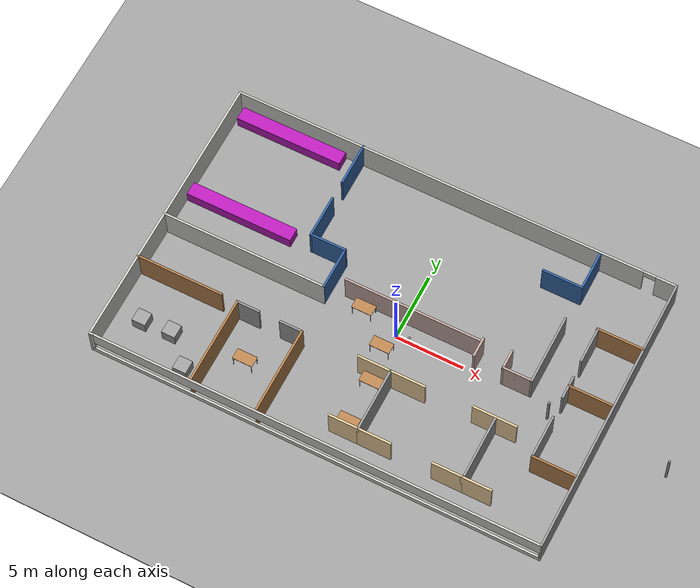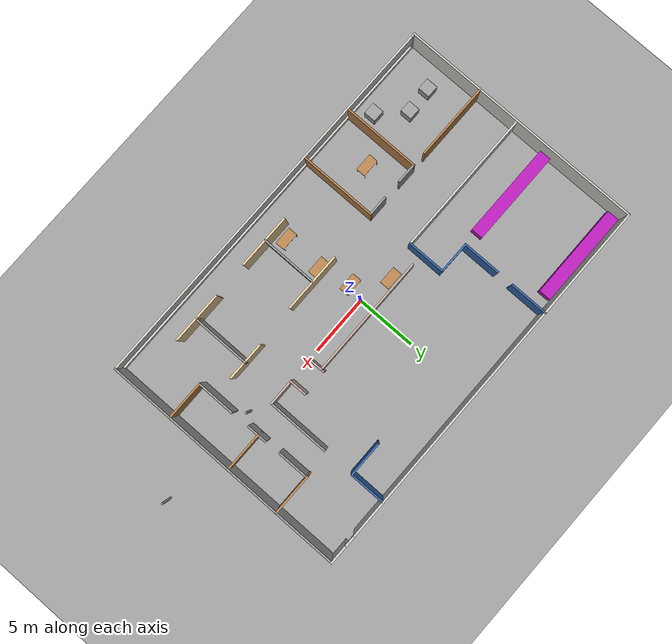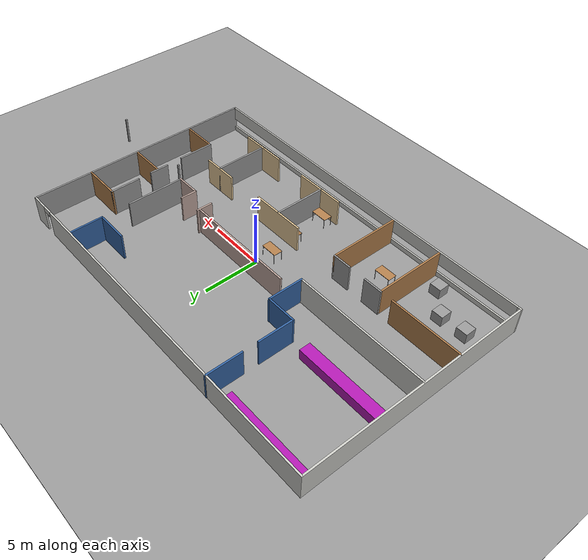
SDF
<sdf version="1.6">
 <world name="default">
  <model name="ground_plane">
   <static>1</static>
   <link name="link">
    <collision name="collision">
     <geometry><plane><normal>0 0 1</normal><size>100 100</size></plane></geometry>
     <surface>
      <contact><collide_bitmask>65535</collide_bitmask></contact>
      <friction><ode><mu>100</mu><mu2>50</mu2></ode></friction>
     </surface>
    </collision>
    <visual name="visual">
     <cast_shadows>0</cast_shadows>
     <geometry><plane><normal>0 0 1</normal><size>100 100</size></plane></geometry>
     <material>
      <script><uri>file://media/materials/scripts/gazebo.material</uri><name>Gazebo/Grey</name></script>
     </material>
    </visual>
   </link>
  </model>
  <model name="myworld2">
   <pose>1.34917 0.407472 0 0 -0 0</pose>
   <link name="Wall_21">
    <collision name="Wall_21_Collision">
     <geometry><box><size>0.15 0.15 2.5</size></box></geometry>
     <pose>0 0 1.25 0 -0 0</pose>
    </collision>
    <visual name="Wall_21_Visual">
     <pose>0 0 1.25 0 -0 0</pose>
     <geometry><box><size>0.15 0.15 2.5</size></box></geometry>
     <material>
      <script><uri>file://media/materials/scripts/gazebo.material</uri><name>Gazebo/Grey</name></script>
      <ambient>1 1 1 1</ambient>
     </material>
     <meta><layer>0</layer></meta>
    </visual>
    <pose>18.9712 -1.42144 0 0 -0 0</pose>
   </link>
   <link name="Wall_29">
    <collision name="Wall_29_Collision">
     <geometry><box><size>0.15 0.15 2.5</size></box></geometry>
     <pose>0 0 1.25 0 -0 0</pose>
    </collision>
    <visual name="Wall_29_Visual">
     <pose>0 0 1.25 0 -0 0</pose>
     <geometry><box><size>0.15 0.15 2.5</size></box></geometry>
     <material>
      <script><uri>file://media/materials/scripts/gazebo.material</uri><name>Gazebo/Grey</name></script>
      <ambient>1 1 1 1</ambient>
     </material>
     <meta><layer>0</layer></meta>
    </visual>
    <pose>10.2577 -1.19451 0 0 -0 0</pose>
   </link>
   <link name="Wall_32">
    <pose>-2.42121 10.4091 0 0 -0 0</pose>
    <visual name="Wall_32_Visual_0">
     <pose>-1.23336 0 1.25 0 -0 0</pose>
     <geometry><box><size>30.7833 0.15 2.5</size></box></geometry>
     <material>
      <script><uri>file://media/materials/scripts/gazebo.material</uri><name>Gazebo/CeilingTiled</name></script>
      <ambient>0.203922 0.396078 0.643137 1</ambient>
     </material>
     <meta><layer>0</layer></meta>
    </visual>
    <collision name="Wall_32_Collision_0">
     <geometry><box><size>30.7833 0.15 2.5</size></box></geometry>
     <pose>-1.23336 0 1.25 0 -0 0</pose>
    </collision>
    <visual name="Wall_32_Visual_1">
     <pose>15.8416 0 1.25 0 -0 0</pose>
     <geometry><box><size>1.56672 0.15 2.5</size></box></geometry>
     <material>
      <script><uri>file://media/materials/scripts/gazebo.material</uri><name>Gazebo/CeilingTiled</name></script>
      <ambient>0.203922 0.396078 0.643137 1</ambient>
     </material>
     <meta><layer>0</layer></meta>
    </visual>
    <collision name="Wall_32_Collision_1">
     <geometry><box><size>1.56672 0.15 2.5</size></box></geometry>
     <pose>15.8416 0 1.25 0 -0 0</pose>
    </collision>
    <visual name="Wall_32_Visual_2">
     <pose>14.6083 0 2.25 0 -0 0</pose>
     <geometry><box><size>0.9 0.15 0.5</size></box></geometry>
     <material>
      <script><uri>file://media/materials/scripts/gazebo.material</uri><name>Gazebo/CeilingTiled</name></script>
      <ambient>0.203922 0.396078 0.643137 1</ambient>
     </material>
     <meta><layer>0</layer></meta>
    </visual>
    <collision name="Wall_32_Collision_2">
     <geometry><box><size>0.9 0.15 0.5</size></box></geometry>
     <pose>14.6083 0 2.25 0 -0 0</pose>
    </collision>
   </link>
   <link name="Wall_33">
    <collision name="Wall_33_Collision">
     <geometry><box><size>21 0.15 2.5</size></box></geometry>
     <pose>0 0 1.25 0 -0 0</pose>
    </collision>
    <visual name="Wall_33_Visual">
     <pose>0 0 1.25 0 -0 0</pose>
     <geometry><box><size>21 0.15 2.5</size></box></geometry>
     <material>
      <script><uri>file://media/materials/scripts/gazebo.material</uri><name>Gazebo/Grey</name></script>
      <ambient>1 1 1 1</ambient>
     </material>
     <meta><layer>0</layer></meta>
    </visual>
    <pose>14.1288 -0.015902 0 0 -0 -1.5708</pose>
   </link>
   <link name="Wall_34">
    <pose>-2.42121 -10.4409 0 0 -0 3.14159</pose>
    <visual name="Wall_34_Visual_0">
     <pose>-16.5864 0 1.25 0 -0 0</pose>
     <geometry><box><size>0.077133 0.15 2.5</size></box></geometry>
     <material>
      <script><uri>file://media/materials/scripts/gazebo.material</uri><name>Gazebo/CeilingTiled</name></script>
      <ambient>1 1 1 1</ambient>
     </material>
     <meta><layer>0</layer></meta>
    </visual>
    <collision name="Wall_34_Collision_0">
     <geometry><box><size>0.077133 0.15 2.5</size></box></geometry>
     <pose>-16.5864 0 1.25 0 -0 0</pose>
    </collision>
    <visual name="Wall_34_Visual_1">
     <pose>0.038567 0 0.25 0 -0 0</pose>
     <geometry><box><size>33.1729 0.15 0.5</size></box></geometry>
     <material>
      <script><uri>file://media/materials/scripts/gazebo.material</uri><name>Gazebo/CeilingTiled</name></script>
      <ambient>1 1 1 1</ambient>
     </material>
     <meta><layer>0</layer></meta>
    </visual>
    <collision name="Wall_34_Collision_1">
     <geometry><box><size>33.1729 0.15 0.5</size></box></geometry>
     <pose>0.038567 0 0.25 0 -0 0</pose>
    </collision>
    <visual name="Wall_34_Visual_2">
     <pose>16.4492 0 1.5 0 -0 0</pose>
     <geometry><box><size>0.35158 0.15 2</size></box></geometry>
     <material>
      <script><uri>file://media/materials/scripts/gazebo.material</uri><name>Gazebo/CeilingTiled</name></script>
      <ambient>1 1 1 1</ambient>
     </material>
     <meta><layer>0</layer></meta>
    </visual>
    <collision name="Wall_34_Collision_2">
     <geometry><box><size>0.35158 0.15 2</size></box></geometry>
     <pose>16.4492 0 1.5 0 -0 0</pose>
    </collision>
    <visual name="Wall_34_Visual_3">
     <pose>-0.137223 0 1.9 0 -0 0</pose>
     <geometry><box><size>32.8213 0.15 1.2</size></box></geometry>
     <material>
      <script><uri>file://media/materials/scripts/gazebo.material</uri><name>Gazebo/CeilingTiled</name></script>
      <ambient>1 1 1 1</ambient>
     </material>
     <meta><layer>0</layer></meta>
    </visual>
    <collision name="Wall_34_Collision_3">
     <geometry><box><size>32.8213 0.15 1.2</size></box></geometry>
     <pose>-0.137223 0 1.9 0 -0 0</pose>
    </collision>
   </link>
   <link name="Wall_35">
    <collision name="Wall_35_Collision">
     <geometry><box><size>21 0.15 2.5</size></box></geometry>
     <pose>0 0 1.25 0 -0 0</pose>
    </collision>
    <visual name="Wall_35_Visual">
     <pose>0 0 1.25 0 -0 0</pose>
     <geometry><box><size>21 0.15 2.5</size></box></geometry>
     <material>
      <script><uri>file://media/materials/scripts/gazebo.material</uri><name>Gazebo/CeilingTiled</name></script>
      <ambient>1 1 1 1</ambient>
     </material>
     <meta><layer>0</layer></meta>
    </visual>
    <pose>-18.9712 -0.015902 0 0 -0 1.5708</pose>
   </link>
   <link name="Wall_38">
    <collision name="Wall_38_Collision">
     <geometry><box><size>6.5 0.15 2.5</size></box></geometry>
     <pose>0 0 1.25 0 -0 0</pose>
    </collision>
    <visual name="Wall_38_Visual">
     <pose>0 0 1.25 0 -0 0</pose>
     <geometry><box><size>6.5 0.15 2.5</size></box></geometry>
     <material>
      <script><uri>file://media/materials/scripts/gazebo.material</uri><name>Gazebo/Wood</name></script>
      <ambient>1 1 1 1</ambient>
     </material>
     <meta><layer>0</layer></meta>
    </visual>
    <pose>-15.7869 -3.95257 0 0 -0 0</pose>
   </link>
   <link name="Wall_40">
    <collision name="Wall_40_Collision">
     <geometry><box><size>1.75 0.15 2.5</size></box></geometry>
     <pose>0 0 1.25 0 -0 0</pose>
    </collision>
    <visual name="Wall_40_Visual">
     <pose>0 0 1.25 0 -0 0</pose>
     <geometry><box><size>1.75 0.15 2.5</size></box></geometry>
     <material>
      <script><uri>file://media/materials/scripts/gazebo.material</uri><name>Gazebo/Grey</name></script>
      <ambient>1 1 1 1</ambient>
     </material>
     <meta><layer>0</layer></meta>
    </visual>
    <pose>-10.5979 -3.95257 0 0 -0 0</pose>
   </link>
   <link name="Wall_42">
    <collision name="Wall_42_Collision">
     <geometry><box><size>1.75 0.15 2.5</size></box></geometry>
     <pose>0 0 1.25 0 -0 0</pose>
    </collision>
    <visual name="Wall_42_Visual">
     <pose>0 0 1.25 0 -0 0</pose>
     <geometry><box><size>1.75 0.15 2.5</size></box></geometry>
     <material>
      <script><uri>file://media/materials/scripts/gazebo.material</uri><name>Gazebo/Grey</name></script>
      <ambient>1 1 1 1</ambient>
     </material>
     <meta><layer>0</layer></meta>
    </visual>
    <pose>-7.34119 -3.95257 0 0 -0 0</pose>
   </link>
   <link name="Wall_44">
    <collision name="Wall_44_Collision">
     <geometry><box><size>6.5 0.15 2.5</size></box></geometry>
     <pose>0 0 1.25 0 -0 0</pose>
    </collision>
    <visual name="Wall_44_Visual">
     <pose>0 0 1.25 0 -0 0</pose>
     <geometry><box><size>6.5 0.15 2.5</size></box></geometry>
     <material>
      <script><uri>file://media/materials/scripts/gazebo.material</uri><name>Gazebo/Wood</name></script>
      <ambient>1 1 1 1</ambient>
     </material>
     <meta><layer>0</layer></meta>
    </visual>
    <pose>-6.54119 -7.12757 0 0 -0 -1.5708</pose>
   </link>
   <link name="Wall_46">
    <collision name="Wall_46_Collision">
     <geometry><box><size>6.5 0.15 2.5</size></box></geometry>
     <pose>0 0 1.25 0 -0 0</pose>
    </collision>
    <visual name="Wall_46_Visual">
     <pose>0 0 1.25 0 -0 0</pose>
     <geometry><box><size>6.5 0.15 2.5</size></box></geometry>
     <material>
      <script><uri>file://media/materials/scripts/gazebo.material</uri><name>Gazebo/Wood</name></script>
      <ambient>1 1 1 1</ambient>
     </material>
     <meta><layer>0</layer></meta>
    </visual>
    <pose>-11.3979 -7.12757 0 0 -0 -1.5708</pose>
   </link>
   <link name="Wall_48">
    <collision name="Wall_48_Collision">
     <geometry><box><size>12.25 0.15 2.5</size></box></geometry>
     <pose>0 0 1.25 0 -0 0</pose>
    </collision>
    <visual name="Wall_48_Visual">
     <pose>0 0 1.25 0 -0 0</pose>
     <geometry><box><size>12.25 0.15 2.5</size></box></geometry>
     <material>
      <script><uri>file://media/materials/scripts/gazebo.material</uri><name>Gazebo/CeilingTiled</name></script>
      <ambient>1 1 1 1</ambient>
     </material>
     <meta><layer>0</layer></meta>
    </visual>
    <pose>-12.8594 -0.328155 0 0 -0 0</pose>
   </link>
   <link name="Wall_49">
    <collision name="Wall_49_Collision">
     <geometry><box><size>3.25 0.15 2.5</size></box></geometry>
     <pose>0 0 1.25 0 -0 0</pose>
    </collision>
    <visual name="Wall_49_Visual">
     <pose>0 0 1.25 0 -0 0</pose>
     <geometry><box><size>3.25 0.15 2.5</size></box></geometry>
     <material>
      <script><uri>file://media/materials/scripts/gazebo.material</uri><name>Gazebo/Grey</name></script>
      <ambient>0.203922 0.396078 0.643137 1</ambient>
     </material>
     <meta><layer>0</layer></meta>
    </visual>
    <pose>-6.80939 1.22185 0 0 -0 1.5708</pose>
   </link>
   <link name="Wall_50">
    <collision name="Wall_50_Collision">
     <geometry><box><size>2.75 0.15 2.5</size></box></geometry>
     <pose>0 0 1.25 0 -0 0</pose>
    </collision>
    <visual name="Wall_50_Visual">
     <pose>0 0 1.25 0 -0 0</pose>
     <geometry><box><size>2.75 0.15 2.5</size></box></geometry>
     <material>
      <script><uri>file://media/materials/scripts/gazebo.material</uri><name>Gazebo/Grey</name></script>
      <ambient>0.203922 0.396078 0.643137 1</ambient>
     </material>
     <meta><layer>0</layer></meta>
    </visual>
    <pose>-8.10939 2.77184 0 0 -0 3.14159</pose>
   </link>
   <link name="Wall_53">
    <collision name="Wall_53_Collision">
     <geometry><box><size>3.25 0.15 2.5</size></box></geometry>
     <pose>0 0 1.25 0 -0 0</pose>
    </collision>
    <visual name="Wall_53_Visual">
     <pose>0 0 1.25 0 -0 0</pose>
     <geometry><box><size>3.25 0.15 2.5</size></box></geometry>
     <material>
      <script><uri>file://media/materials/scripts/gazebo.material</uri><name>Gazebo/Grey</name></script>
      <ambient>0.203922 0.396078 0.643137 1</ambient>
     </material>
     <meta><layer>0</layer></meta>
    </visual>
    <pose>-9.40939 4.32184 0 0 -0 1.5708</pose>
   </link>
   <link name="Wall_55">
    <collision name="Wall_55_Collision">
     <geometry><box><size>3.25 0.15 2.5</size></box></geometry>
     <pose>0 0 1.25 0 -0 0</pose>
    </collision>
    <visual name="Wall_55_Visual">
     <pose>0 0 1.25 0 -0 0</pose>
     <geometry><box><size>3.25 0.15 2.5</size></box></geometry>
     <material>
      <script><uri>file://media/materials/scripts/gazebo.material</uri><name>Gazebo/Grey</name></script>
      <ambient>0.203922 0.396078 0.643137 1</ambient>
     </material>
     <meta><layer>0</layer></meta>
    </visual>
    <pose>-9.40186 8.8909 0 0 -0 1.5708</pose>
   </link>
   <link name="Wall_57">
    <collision name="Wall_57_Collision">
     <geometry><box><size>10.25 0.15 2.5</size></box></geometry>
     <pose>0 1.5 1.25 0 -0 0</pose>
    </collision>
    <visual name="Wall_57_Visual">
     <pose>0 1.5 1.25 0 -0 0</pose>
     <geometry><box><size>10.25 0.15 2.5</size></box></geometry>
     <material>
      <script><uri>file://media/materials/scripts/gazebo.material</uri><name>Gazebo/Grey</name></script>
      <ambient>0.760784 0.662745 0.627451 1</ambient>
     </material>
     <meta><layer>0</layer></meta>
    </visual>
    <pose>-0.674915 -0.671847 0 0 -0 0</pose>
   </link>
   <link name="Wall_58">
    <collision name="Wall_58_Collision">
     <geometry><box><size>1.5 0.15 2.5</size></box></geometry>
     <pose>0 0 1.25 0 -0 0</pose>
    </collision>
    <visual name="Wall_58_Visual">
     <pose>0 0 1.25 0 -0 0</pose>
     <geometry><box><size>1.5 0.15 2.5</size></box></geometry>
     <material>
      <script><uri>file://media/materials/scripts/gazebo.material</uri><name>Gazebo/Grey</name></script>
      <ambient>0.760784 0.662745 0.627451 1</ambient>
     </material>
     <meta><layer>0</layer></meta>
    </visual>
    <pose>4.37509 0.346845 0 0 -0 1.5708</pose>
   </link>
   <link name="Wall_60">
    <collision name="Wall_60_Collision">
     <geometry><box><size>1.5 0.15 2.5</size></box></geometry>
     <pose>0 0 1.25 0 -0 0</pose>
    </collision>
    <visual name="Wall_60_Visual">
     <pose>0 0 1.25 0 -0 0</pose>
     <geometry><box><size>1.5 0.15 2.5</size></box></geometry>
     <material>
      <script><uri>file://media/materials/scripts/gazebo.material</uri><name>Gazebo/Grey</name></script>
      <ambient>0.760784 0.662745 0.627451 1</ambient>
     </material>
     <meta><layer>0</layer></meta>
    </visual>
    <pose>6.46153 0.415095 0 0 -0 -1.5708</pose>
   </link>
   <link name="Wall_61">
    <collision name="Wall_61_Collision">
     <geometry><box><size>2.25 0.15 2.5</size></box></geometry>
     <pose>0 0 1.25 0 -0 0</pose>
    </collision>
    <visual name="Wall_61_Visual">
     <pose>0 0 1.25 0 -0 0</pose>
     <geometry><box><size>2.25 0.15 2.5</size></box></geometry>
     <material>
      <script><uri>file://media/materials/scripts/gazebo.material</uri><name>Gazebo/Grey</name></script>
      <ambient>0.760784 0.662745 0.627451 1</ambient>
     </material>
     <meta><layer>0</layer></meta>
    </visual>
    <pose>7.51154 -0.259905 0 0 -0 0</pose>
   </link>
   <link name="Wall_62">
    <collision name="Wall_62_Collision">
     <geometry><box><size>5.25 0.15 2.5</size></box></geometry>
     <pose>0 0 1.25 0 -0 0</pose>
    </collision>
    <visual name="Wall_62_Visual">
     <pose>0 0 1.25 0 -0 0</pose>
     <geometry><box><size>5.25 0.15 2.5</size></box></geometry>
     <material>
      <script><uri>file://media/materials/scripts/gazebo.material</uri><name>Gazebo/Grey</name></script>
      <ambient>1 1 1 1</ambient>
     </material>
     <meta><layer>0</layer></meta>
    </visual>
    <pose>8.56154 2.29009 0 0 -0 1.5708</pose>
   </link>
   <link name="Wall_64">
    <collision name="Wall_64_Collision">
     <geometry><box><size>3 0.15 2.5</size></box></geometry>
     <pose>0 0 1.25 0 -0 0</pose>
    </collision>
    <visual name="Wall_64_Visual">
     <pose>0 0 1.25 0 -0 0</pose>
     <geometry><box><size>3 0.15 2.5</size></box></geometry>
     <material>
      <script><uri>file://media/materials/scripts/gazebo.material</uri><name>Gazebo/Grey</name></script>
      <ambient>0.203922 0.396078 0.643137 1</ambient>
     </material>
     <meta><layer>0</layer></meta>
    </visual>
    <pose>7.13765 7.44596 0 0 -0 3.14159</pose>
   </link>
   <link name="Wall_66">
    <collision name="Wall_66_Collision">
     <geometry><box><size>3 0.15 2.5</size></box></geometry>
     <pose>0 0 1.25 0 -0 0</pose>
    </collision>
    <visual name="Wall_66_Visual">
     <pose>0 0 1.25 0 -0 0</pose>
     <geometry><box><size>3 0.15 2.5</size></box></geometry>
     <material>
      <script><uri>file://media/materials/scripts/gazebo.material</uri><name>Gazebo/Grey</name></script>
      <ambient>0.203922 0.396078 0.643137 1</ambient>
     </material>
     <meta><layer>0</layer></meta>
    </visual>
    <pose>8.56265 8.87096 0 0 -0 1.5708</pose>
   </link>
   <link name="Wall_68">
    <collision name="Wall_68_Collision">
     <geometry><box><size>2.75 0.15 2.5</size></box></geometry>
     <pose>0 0 1.25 0 -0 0</pose>
    </collision>
    <visual name="Wall_68_Visual">
     <pose>0 0 1.25 0 -0 0</pose>
     <geometry><box><size>2.75 0.15 2.5</size></box></geometry>
     <material>
      <script><uri>file://media/materials/scripts/gazebo.material</uri><name>Gazebo/Grey</name></script>
      <ambient>1 1 1 1</ambient>
     </material>
     <meta><layer>0</layer></meta>
    </visual>
    <pose>10.8213 3.83474 0 0 -0 -1.5708</pose>
   </link>
   <link name="Wall_70">
    <collision name="Wall_70_Collision">
     <geometry><box><size>3.5 0.15 2.5</size></box></geometry>
     <pose>0 0 1.25 0 -0 0</pose>
    </collision>
    <visual name="Wall_70_Visual">
     <pose>0 0 1.25 0 -0 0</pose>
     <geometry><box><size>3.5 0.15 2.5</size></box></geometry>
     <material>
      <script><uri>file://media/materials/scripts/gazebo.material</uri><name>Gazebo/Wood</name></script>
      <ambient>1 1 1 1</ambient>
     </material>
     <meta><layer>0</layer></meta>
    </visual>
    <pose>12.4438 5.13474 0 0 -0 0</pose>
   </link>
   <link name="Wall_72">
    <collision name="Wall_72_Collision">
     <geometry><box><size>1.75 0.15 2.5</size></box></geometry>
     <pose>0 0 1.25 0 -0 0</pose>
    </collision>
    <visual name="Wall_72_Visual">
     <pose>0 0 1.25 0 -0 0</pose>
     <geometry><box><size>1.75 0.15 2.5</size></box></geometry>
     <material>
      <script><uri>file://media/materials/scripts/gazebo.material</uri><name>Gazebo/Grey</name></script>
      <ambient>1 1 1 1</ambient>
     </material>
     <meta><layer>0</layer></meta>
    </visual>
    <pose>10.8739 0.395151 0 0 -0 -1.5708</pose>
   </link>
   <link name="Wall_74">
    <collision name="Wall_74_Collision">
     <geometry><box><size>3.25 0.15 2.5</size></box></geometry>
     <pose>0 0 1.25 0 -0 0</pose>
    </collision>
    <visual name="Wall_74_Visual">
     <pose>0 0 1.25 0 -0 0</pose>
     <geometry><box><size>3.25 0.15 2.5</size></box></geometry>
     <material>
      <script><uri>file://media/materials/scripts/gazebo.material</uri><name>Gazebo/Grey</name></script>
      <ambient>1 1 1 1</ambient>
     </material>
     <meta><layer>0</layer></meta>
    </visual>
    <pose>10.9264 -3.55904 0 0 -0 -1.5708</pose>
   </link>
   <link name="Wall_75">
    <collision name="Wall_75_Collision">
     <geometry><box><size>3.25 0.15 2.5</size></box></geometry>
     <pose>0 0 1.25 0 -0 0</pose>
    </collision>
    <visual name="Wall_75_Visual">
     <pose>0 0 1.25 0 -0 0</pose>
     <geometry><box><size>3.25 0.15 2.5</size></box></geometry>
     <material>
      <script><uri>file://media/materials/scripts/gazebo.material</uri><name>Gazebo/Wood</name></script>
      <ambient>1 1 1 1</ambient>
     </material>
     <meta><layer>0</layer></meta>
    </visual>
    <pose>12.4764 -5.10905 0 0 -0 0</pose>
   </link>
   <link name="Wall_77">
    <collision name="Wall_77_Collision">
     <geometry><box><size>3.25 0.15 2.5</size></box></geometry>
     <pose>0 0 1.25 0 -0 0</pose>
    </collision>
    <visual name="Wall_77_Visual">
     <pose>0 0 1.25 0 -0 0</pose>
     <geometry><box><size>3.25 0.15 2.5</size></box></geometry>
     <material>
      <script><uri>file://media/materials/scripts/gazebo.material</uri><name>Gazebo/Wood</name></script>
      <ambient>1 1 1 1</ambient>
     </material>
     <meta><layer>0</layer></meta>
    </visual>
    <pose>12.4239 0.512289 0 0 -0 0</pose>
   </link>
   <link name="Wall_79">
    <collision name="Wall_79_Collision">
     <geometry><box><size>5 0.15 2.5</size></box></geometry>
     <pose>0 0 1.25 0 -0 0</pose>
    </collision>
    <visual name="Wall_79_Visual">
     <pose>0 0 1.25 0 -0 0</pose>
     <geometry><box><size>5 0.15 2.5</size></box></geometry>
     <material>
      <script><uri>file://media/materials/scripts/gazebo.material</uri><name>Gazebo/Grey</name></script>
      <ambient>0.921569 0.807843 0.615686 1</ambient>
     </material>
     <meta><layer>0</layer></meta>
    </visual>
    <pose>0.065808 -3.84752 0 0 -0 0</pose>
   </link>
   <link name="Wall_81">
    <collision name="Wall_81_Collision">
     <geometry><box><size>4.75 0.15 2.5</size></box></geometry>
     <pose>0 0 1.25 0 -0 0</pose>
    </collision>
    <visual name="Wall_81_Visual">
     <pose>0 0 1.25 0 -0 0</pose>
     <geometry><box><size>4.75 0.15 2.5</size></box></geometry>
     <material>
      <script><uri>file://media/materials/scripts/gazebo.material</uri><name>Gazebo/Grey</name></script>
      <ambient>1 1 1 1</ambient>
     </material>
     <meta><layer>0</layer></meta>
    </visual>
    <pose>0.000616 -6.20005 0 0 -0 -1.5708</pose>
   </link>
   <link name="Wall_82">
    <collision name="Wall_82_Collision">
     <geometry><box><size>2.5 0.15 2.5</size></box></geometry>
     <pose>0 0 1.25 0 -0 0</pose>
    </collision>
    <visual name="Wall_82_Visual">
     <pose>0 0 1.25 0 -0 0</pose>
     <geometry><box><size>2.5 0.15 2.5</size></box></geometry>
     <material>
      <script><uri>file://media/materials/scripts/gazebo.material</uri><name>Gazebo/Grey</name></script>
      <ambient>0.921569 0.807843 0.615686 1</ambient>
     </material>
     <meta><layer>0</layer></meta>
    </visual>
    <pose>1.17562 -8.50005 0 0 -0 0</pose>
   </link>
   <link name="Wall_84">
    <collision name="Wall_84_Collision">
     <geometry><box><size>2.25 0.15 2.5</size></box></geometry>
     <pose>0 0 1.25 0 -0 0</pose>
    </collision>
    <visual name="Wall_84_Visual">
     <pose>0 0 1.25 0 -0 0</pose>
     <geometry><box><size>2.25 0.15 2.5</size></box></geometry>
     <material>
      <script><uri>file://media/materials/scripts/gazebo.material</uri><name>Gazebo/Grey</name></script>
      <ambient>0.921569 0.807843 0.615686 1</ambient>
     </material>
     <meta><layer>0</layer></meta>
    </visual>
    <pose>-1.04938 -8.50005 0 0 -0 3.14159</pose>
   </link>
   <link name="Wall_86">
    <collision name="Wall_86_Collision">
     <geometry><box><size>3.25 0.15 2.5</size></box></geometry>
     <pose>0 0 1.25 0 -0 0</pose>
    </collision>
    <visual name="Wall_86_Visual">
     <pose>0 0 1.25 0 -0 0</pose>
     <geometry><box><size>3.25 0.15 2.5</size></box></geometry>
     <material>
      <script><uri>file://media/materials/scripts/gazebo.material</uri><name>Gazebo/Grey</name></script>
      <ambient>0.921569 0.807843 0.615686 1</ambient>
     </material>
     <meta><layer>0</layer></meta>
    </visual>
    <pose>7.53878 -3.68994 0 0 -0 0</pose>
   </link>
   <link name="Wall_88">
    <collision name="Wall_88_Collision">
     <geometry><box><size>4.75 0.15 2.5</size></box></geometry>
     <pose>0 0 1.25 0 -0 0</pose>
    </collision>
    <visual name="Wall_88_Visual">
     <pose>0 0 1.25 0 -0 0</pose>
     <geometry><box><size>4.75 0.15 2.5</size></box></geometry>
     <material>
      <script><uri>file://media/materials/scripts/gazebo.material</uri><name>Gazebo/Grey</name></script>
      <ambient>1 1 1 1</ambient>
     </material>
     <meta><layer>0</layer></meta>
    </visual>
    <pose>7.61715 -5.98994 0 0 -0 -1.5708</pose>
   </link>
   <link name="Wall_90">
    <collision name="Wall_90_Collision">
     <geometry><box><size>2.25 0.15 2.5</size></box></geometry>
     <pose>0 0 1.25 0 -0 0</pose>
    </collision>
    <visual name="Wall_90_Visual">
     <pose>0 0 1.25 0 -0 0</pose>
     <geometry><box><size>2.25 0.15 2.5</size></box></geometry>
     <material>
      <script><uri>file://media/materials/scripts/gazebo.material</uri><name>Gazebo/Grey</name></script>
      <ambient>0.921569 0.807843 0.615686 1</ambient>
     </material>
     <meta><layer>0</layer></meta>
    </visual>
    <pose>6.46098 -8.46997 0 0 -0 0</pose>
   </link>
   <link name="Wall_91">
    <collision name="Wall_91_Collision">
     <geometry><box><size>2.25 0.15 2.5</size></box></geometry>
     <pose>0 0 1.25 0 -0 0</pose>
    </collision>
    <visual name="Wall_91_Visual">
     <pose>0 0 1.25 0 -0 0</pose>
     <geometry><box><size>2.25 0.15 2.5</size></box></geometry>
     <material>
      <script><uri>file://media/materials/scripts/gazebo.material</uri><name>Gazebo/Grey</name></script>
      <ambient>0.921569 0.807843 0.615686 1</ambient>
     </material>
     <meta><layer>0</layer></meta>
    </visual>
    <pose>8.56098 -8.46997 0 0 -0 0</pose>
   </link>
   <static>1</static>
  </model>
  <model name="ground_plane_0">
   <static>1</static>
   <link name="link">
    <collision name="collision">
     <geometry><plane><normal>0 0 1</normal><size>100 100</size></plane></geometry>
     <surface>
      <contact><collide_bitmask>65535</collide_bitmask></contact>
      <friction><ode><mu>100</mu><mu2>50</mu2></ode></friction>
     </surface>
    </collision>
    <visual name="visual">
     <cast_shadows>0</cast_shadows>
     <geometry><plane><normal>0 0 1</normal><size>100 100</size></plane></geometry>
     <material>
      <script><uri>file://media/materials/scripts/gazebo.material</uri><name>Gazebo/Grey</name></script>
     </material>
    </visual>
   </link>
   <pose>-9.98437 5.08925 0 0 -0 0</pose>
  </model>
  <model name="table">
   <static>1</static>
   <link name="link">
    <collision name="surface">
     <pose>0 0 1 0 -0 0</pose>
     <geometry><box><size>1.5 0.8 0.03</size></box></geometry>
     <surface><friction><ode><mu>0.6</mu><mu2>0.6</mu2></ode></friction></surface>
    </collision>
    <visual name="visual1">
     <pose>0 0 1 0 -0 0</pose>
     <geometry><box><size>1.5 0.8 0.03</size></box></geometry>
     <material>
      <script><uri>file://media/materials/scripts/gazebo.material</uri><name>Gazebo/Wood</name></script>
     </material>
    </visual>
    <collision name="front_left_leg">
     <pose>0.68 0.38 0.5 0 -0 0</pose>
     <geometry><cylinder><radius>0.02</radius><length>1</length></cylinder></geometry>
    </collision>
    <visual name="front_left_leg">
     <pose>0.68 0.38 0.5 0 -0 0</pose>
     <geometry><cylinder><radius>0.02</radius><length>1</length></cylinder></geometry>
     <material>
      <script><uri>file://media/materials/scripts/gazebo.material</uri><name>Gazebo/Grey</name></script>
     </material>
    </visual>
    <collision name="front_right_leg">
     <pose>0.68 -0.38 0.5 0 -0 0</pose>
     <geometry><cylinder><radius>0.02</radius><length>1</length></cylinder></geometry>
    </collision>
    <visual name="front_right_leg">
     <pose>0.68 -0.38 0.5 0 -0 0</pose>
     <geometry><cylinder><radius>0.02</radius><length>1</length></cylinder></geometry>
     <material>
      <script><uri>file://media/materials/scripts/gazebo.material</uri><name>Gazebo/Grey</name></script>
     </material>
    </visual>
    <collision name="back_right_leg">
     <pose>-0.68 -0.38 0.5 0 -0 0</pose>
     <geometry><cylinder><radius>0.02</radius><length>1</length></cylinder></geometry>
    </collision>
    <visual name="back_right_leg">
     <pose>-0.68 -0.38 0.5 0 -0 0</pose>
     <geometry><cylinder><radius>0.02</radius><length>1</length></cylinder></geometry>
     <material>
      <script><uri>file://media/materials/scripts/gazebo.material</uri><name>Gazebo/Grey</name></script>
     </material>
    </visual>
    <collision name="back_left_leg">
     <pose>-0.68 0.38 0.5 0 -0 0</pose>
     <geometry><cylinder><radius>0.02</radius><length>1</length></cylinder></geometry>
    </collision>
    <visual name="back_left_leg">
     <pose>-0.68 0.38 0.5 0 -0 0</pose>
     <geometry><cylinder><radius>0.02</radius><length>1</length></cylinder></geometry>
     <material>
      <script><uri>file://media/materials/scripts/gazebo.material</uri><name>Gazebo/Grey</name></script>
     </material>
    </visual>
   </link>
   <pose>0.20374 -3.98405 0 0 -0 0</pose>
  </model>
  <model name="table_1_clone">
   <static>1</static>
   <link name="link">
    <collision name="surface">
     <pose>0 -2 1 0 -0 0</pose>
     <geometry><box><size>1.5 0.8 0.03</size></box></geometry>
     <surface><friction><ode><mu>0.6</mu><mu2>0.6</mu2></ode></friction></surface>
    </collision>
    <visual name="visual1">
     <pose>0 -2 1 0 -0 0</pose>
     <geometry><box><size>1.5 0.8 0.03</size></box></geometry>
     <material>
      <script><uri>file://media/materials/scripts/gazebo.material</uri><name>Gazebo/Wood</name></script>
     </material>
    </visual>
    <collision name="front_left_leg">
     <pose>0.68 -1.62 0.5 0 -0 0</pose>
     <geometry><cylinder><radius>0.02</radius><length>1</length></cylinder></geometry>
    </collision>
    <visual name="front_left_leg">
     <pose>0.68 -1.62 0.5 0 -0 0</pose>
     <geometry><cylinder><radius>0.02</radius><length>1</length></cylinder></geometry>
     <material>
      <script><uri>file://media/materials/scripts/gazebo.material</uri><name>Gazebo/Grey</name></script>
     </material>
    </visual>
    <collision name="front_right_leg">
     <pose>0.68 -2.38 0.5 0 -0 0</pose>
     <geometry><cylinder><radius>0.02</radius><length>1</length></cylinder></geometry>
    </collision>
    <visual name="front_right_leg">
     <pose>0.68 -2.38 0.5 0 -0 0</pose>
     <geometry><cylinder><radius>0.02</radius><length>1</length></cylinder></geometry>
     <material>
      <script><uri>file://media/materials/scripts/gazebo.material</uri><name>Gazebo/Grey</name></script>
     </material>
    </visual>
    <collision name="back_right_leg">
     <pose>-0.68 -2.38 0.5 0 -0 0</pose>
     <geometry><cylinder><radius>0.02</radius><length>1</length></cylinder></geometry>
    </collision>
    <visual name="back_right_leg">
     <pose>-0.68 -2.38 0.5 0 -0 0</pose>
     <geometry><cylinder><radius>0.02</radius><length>1</length></cylinder></geometry>
     <material>
      <script><uri>file://media/materials/scripts/gazebo.material</uri><name>Gazebo/Grey</name></script>
     </material>
    </visual>
    <collision name="back_left_leg">
     <pose>-0.68 -1.62 0.5 0 -0 0</pose>
     <geometry><cylinder><radius>0.02</radius><length>1</length></cylinder></geometry>
    </collision>
    <visual name="back_left_leg">
     <pose>-0.68 -1.62 0.5 0 -0 0</pose>
     <geometry><cylinder><radius>0.02</radius><length>1</length></cylinder></geometry>
     <material>
      <script><uri>file://media/materials/scripts/gazebo.material</uri><name>Gazebo/Grey</name></script>
     </material>
    </visual>
   </link>
   <pose>-0.381205 0.631998 0 0 -0 0</pose>
  </model>
  <model name="table_1_clone_0">
   <static>1</static>
   <link name="link">
    <collision name="surface">
     <pose>0 0 1 0 -0 0</pose>
     <geometry><box><size>1.5 0.8 0.03</size></box></geometry>
     <surface><friction><ode><mu>0.6</mu><mu2>0.6</mu2></ode></friction></surface>
    </collision>
    <visual name="visual1">
     <pose>0 0 1 0 -0 0</pose>
     <geometry><box><size>1.5 0.8 0.03</size></box></geometry>
     <material>
      <script><uri>file://media/materials/scripts/gazebo.material</uri><name>Gazebo/Wood</name></script>
     </material>
    </visual>
    <collision name="front_left_leg">
     <pose>0.68 0.38 0.5 0 -0 0</pose>
     <geometry><cylinder><radius>0.02</radius><length>1</length></cylinder></geometry>
    </collision>
    <visual name="front_left_leg">
     <pose>0.68 0.38 0.5 0 -0 0</pose>
     <geometry><cylinder><radius>0.02</radius><length>1</length></cylinder></geometry>
     <material>
      <script><uri>file://media/materials/scripts/gazebo.material</uri><name>Gazebo/Grey</name></script>
     </material>
    </visual>
    <collision name="front_right_leg">
     <pose>0.68 -0.38 0.5 0 -0 0</pose>
     <geometry><cylinder><radius>0.02</radius><length>1</length></cylinder></geometry>
    </collision>
    <visual name="front_right_leg">
     <pose>0.68 -0.38 0.5 0 -0 0</pose>
     <geometry><cylinder><radius>0.02</radius><length>1</length></cylinder></geometry>
     <material>
      <script><uri>file://media/materials/scripts/gazebo.material</uri><name>Gazebo/Grey</name></script>
     </material>
    </visual>
    <collision name="back_right_leg">
     <pose>-0.68 -0.38 0.5 0 -0 0</pose>
     <geometry><cylinder><radius>0.02</radius><length>1</length></cylinder></geometry>
    </collision>
    <visual name="back_right_leg">
     <pose>-0.68 -0.38 0.5 0 -0 0</pose>
     <geometry><cylinder><radius>0.02</radius><length>1</length></cylinder></geometry>
     <material>
      <script><uri>file://media/materials/scripts/gazebo.material</uri><name>Gazebo/Grey</name></script>
     </material>
    </visual>
    <collision name="back_left_leg">
     <pose>-0.68 0.38 0.5 0 -0 0</pose>
     <geometry><cylinder><radius>0.02</radius><length>1</length></cylinder></geometry>
    </collision>
    <visual name="back_left_leg">
     <pose>-0.68 0.38 0.5 0 -0 0</pose>
     <geometry><cylinder><radius>0.02</radius><length>1</length></cylinder></geometry>
     <material>
      <script><uri>file://media/materials/scripts/gazebo.material</uri><name>Gazebo/Grey</name></script>
     </material>
    </visual>
   </link>
   <pose>-2.72863 0.611935 0 0 -0 0</pose>
  </model>
  <model name="table_1_clone_3">
   <static>1</static>
   <link name="link">
    <collision name="surface">
     <pose>0 0 1 0 -0 0</pose>
     <geometry><box><size>1.5 0.8 0.03</size></box></geometry>
     <surface><friction><ode><mu>0.6</mu><mu2>0.6</mu2></ode></friction></surface>
    </collision>
    <visual name="visual1">
     <pose>0 0 1 0 -0 0</pose>
     <geometry><box><size>1.5 0.8 0.03</size></box></geometry>
     <material>
      <script><uri>file://media/materials/scripts/gazebo.material</uri><name>Gazebo/Wood</name></script>
     </material>
    </visual>
    <collision name="front_left_leg">
     <pose>0.68 0.38 0.5 0 -0 0</pose>
     <geometry><cylinder><radius>0.02</radius><length>1</length></cylinder></geometry>
    </collision>
    <visual name="front_left_leg">
     <pose>0.68 0.38 0.5 0 -0 0</pose>
     <geometry><cylinder><radius>0.02</radius><length>1</length></cylinder></geometry>
     <material>
      <script><uri>file://media/materials/scripts/gazebo.material</uri><name>Gazebo/Grey</name></script>
     </material>
    </visual>
    <collision name="front_right_leg">
     <pose>0.68 -0.38 0.5 0 -0 0</pose>
     <geometry><cylinder><radius>0.02</radius><length>1</length></cylinder></geometry>
    </collision>
    <visual name="front_right_leg">
     <pose>0.68 -0.38 0.5 0 -0 0</pose>
     <geometry><cylinder><radius>0.02</radius><length>1</length></cylinder></geometry>
     <material>
      <script><uri>file://media/materials/scripts/gazebo.material</uri><name>Gazebo/Grey</name></script>
     </material>
    </visual>
    <collision name="back_right_leg">
     <pose>-0.68 -0.38 0.5 0 -0 0</pose>
     <geometry><cylinder><radius>0.02</radius><length>1</length></cylinder></geometry>
    </collision>
    <visual name="back_right_leg">
     <pose>-0.68 -0.38 0.5 0 -0 0</pose>
     <geometry><cylinder><radius>0.02</radius><length>1</length></cylinder></geometry>
     <material>
      <script><uri>file://media/materials/scripts/gazebo.material</uri><name>Gazebo/Grey</name></script>
     </material>
    </visual>
    <collision name="back_left_leg">
     <pose>-0.68 0.38 0.5 0 -0 0</pose>
     <geometry><cylinder><radius>0.02</radius><length>1</length></cylinder></geometry>
    </collision>
    <visual name="back_left_leg">
     <pose>-0.68 0.38 0.5 0 -0 0</pose>
     <geometry><cylinder><radius>0.02</radius><length>1</length></cylinder></geometry>
     <material>
      <script><uri>file://media/materials/scripts/gazebo.material</uri><name>Gazebo/Grey</name></script>
     </material>
    </visual>
   </link>
   <pose>0.18057 -7.25293 0 0 -0 0</pose>
  </model>
  <model name="table_1_clone_10">
   <static>1</static>
   <link name="link">
    <collision name="surface">
     <pose>0 0 1 0 -0 0</pose>
     <geometry><box><size>1.5 0.8 0.03</size></box></geometry>
     <surface><friction><ode><mu>0.6</mu><mu2>0.6</mu2></ode></friction></surface>
    </collision>
    <visual name="visual1">
     <pose>0 0 1 0 -0 0</pose>
     <geometry><box><size>1.5 0.8 0.03</size></box></geometry>
     <material>
      <script><uri>file://media/materials/scripts/gazebo.material</uri><name>Gazebo/Wood</name></script>
     </material>
    </visual>
    <collision name="front_left_leg">
     <pose>0.68 0.38 0.5 0 -0 0</pose>
     <geometry><cylinder><radius>0.02</radius><length>1</length></cylinder></geometry>
    </collision>
    <visual name="front_left_leg">
     <pose>0.68 0.38 0.5 0 -0 0</pose>
     <geometry><cylinder><radius>0.02</radius><length>1</length></cylinder></geometry>
     <material>
      <script><uri>file://media/materials/scripts/gazebo.material</uri><name>Gazebo/Grey</name></script>
     </material>
    </visual>
    <collision name="front_right_leg">
     <pose>0.68 -0.38 0.5 0 -0 0</pose>
     <geometry><cylinder><radius>0.02</radius><length>1</length></cylinder></geometry>
    </collision>
    <visual name="front_right_leg">
     <pose>0.68 -0.38 0.5 0 -0 0</pose>
     <geometry><cylinder><radius>0.02</radius><length>1</length></cylinder></geometry>
     <material>
      <script><uri>file://media/materials/scripts/gazebo.material</uri><name>Gazebo/Grey</name></script>
     </material>
    </visual>
    <collision name="back_right_leg">
     <pose>-0.68 -0.38 0.5 0 -0 0</pose>
     <geometry><cylinder><radius>0.02</radius><length>1</length></cylinder></geometry>
    </collision>
    <visual name="back_right_leg">
     <pose>-0.68 -0.38 0.5 0 -0 0</pose>
     <geometry><cylinder><radius>0.02</radius><length>1</length></cylinder></geometry>
     <material>
      <script><uri>file://media/materials/scripts/gazebo.material</uri><name>Gazebo/Grey</name></script>
     </material>
    </visual>
    <collision name="back_left_leg">
     <pose>-0.68 0.38 0.5 0 -0 0</pose>
     <geometry><cylinder><radius>0.02</radius><length>1</length></cylinder></geometry>
    </collision>
    <visual name="back_left_leg">
     <pose>-0.68 0.38 0.5 0 -0 0</pose>
     <geometry><cylinder><radius>0.02</radius><length>1</length></cylinder></geometry>
     <material>
      <script><uri>file://media/materials/scripts/gazebo.material</uri><name>Gazebo/Grey</name></script>
     </material>
    </visual>
   </link>
   <pose>-8.02042 -6.37442 0 0 -0 0</pose>
  </model>
  <model name="mymodel">
   <link name="link_0">
    <inertial>
     <mass>1</mass>
     <inertia>
      <ixx>0.166667</ixx>
      <ixy>0</ixy>
      <ixz>0</ixz>
      <iyy>0.166667</iyy>
      <iyz>0</iyz>
      <izz>0.166667</izz>
     </inertia>
    </inertial>
    <pose>1.4303 7.8961 0 0 -0 0</pose>
    <visual name="visual">
     <pose>-4 0 0 0 -0 0</pose>
     <geometry><box><size>8 1 1</size></box></geometry>
     <material>
      <lighting>1</lighting>
      <script><uri>file://media/materials/scripts/gazebo.material</uri><name>Gazebo/Grey</name></script>
      <shader type="vertex"><normal_map>__default__</normal_map></shader>
      <ambient>0.3 0.3 0.3 1</ambient>
      <diffuse>0.7 0.1 0.7 1</diffuse>
      <specular>0.01 0.01 0.01 1</specular>
      <emissive>0 0 0 1</emissive>
     </material>
    </visual>
    <collision name="collision">
     <pose>-4 0 0 0 -0 0</pose>
     <geometry><box><size>8 1 1</size></box></geometry>
     <surface>
      <friction>
       <ode><mu>1</mu><mu2>1</mu2><fdir1>0 0 0</fdir1><slip1>0</slip1><slip2>0</slip2></ode>
       <torsional>
        <coefficient>1</coefficient>
        <patch_radius>0</patch_radius>
        <surface_radius>0</surface_radius>
        <use_patch_radius>1</use_patch_radius>
        <ode><slip>0</slip></ode>
       </torsional>
      </friction>
      <bounce><restitution_coefficient>0</restitution_coefficient><threshold>1e+06</threshold></bounce>
      <contact>
       <collide_without_contact>0</collide_without_contact>
       <collide_without_contact_bitmask>1</collide_without_contact_bitmask>
       <collide_bitmask>1</collide_bitmask>
       <ode>
        <soft_cfm>0</soft_cfm>
        <soft_erp>0.2</soft_erp>
        <kp>1e+13</kp>
        <kd>1</kd>
        <max_vel>0.01</max_vel>
        <min_depth>0</min_depth>
       </ode>
       <bullet>
        <split_impulse>1</split_impulse>
        <split_impulse_penetration_threshold>-0.01</split_impulse_penetration_threshold>
        <soft_cfm>0</soft_cfm>
        <soft_erp>0.2</soft_erp>
        <kp>1e+13</kp>
        <kd>1</kd>
       </bullet>
      </contact>
     </surface>
    </collision>
   </link>
   <link name="link_0_clone">
    <inertial>
     <mass>1</mass>
     <inertia>
      <ixx>0.166667</ixx>
      <ixy>0</ixy>
      <ixz>0</ixz>
      <iyy>0.166667</iyy>
      <iyz>0</iyz>
      <izz>0.166667</izz>
     </inertia>
    </inertial>
    <pose>1.23565 1.0619 0 0 -0 0</pose>
    <visual name="visual">
     <pose>-4 0 0 0 -0 0</pose>
     <geometry><box><size>8 1 1</size></box></geometry>
     <material>
      <lighting>1</lighting>
      <script><uri>file://media/materials/scripts/gazebo.material</uri><name>Gazebo/Grey</name></script>
      <shader type="vertex"><normal_map>__default__</normal_map></shader>
      <ambient>0.3 0.3 0.3 1</ambient>
      <diffuse>0.7 0.1 0.7 1</diffuse>
      <specular>0.01 0.01 0.01 1</specular>
      <emissive>0 0 0 1</emissive>
     </material>
    </visual>
    <collision name="collision">
     <pose>-4 0 0 0 -0 0</pose>
     <geometry><box><size>8 1 1</size></box></geometry>
     <surface>
      <friction>
       <ode><mu>1</mu><mu2>1</mu2><fdir1>0 0 0</fdir1><slip1>0</slip1><slip2>0</slip2></ode>
       <torsional>
        <coefficient>1</coefficient>
        <patch_radius>0</patch_radius>
        <surface_radius>0</surface_radius>
        <use_patch_radius>1</use_patch_radius>
        <ode><slip>0</slip></ode>
       </torsional>
      </friction>
      <bounce><restitution_coefficient>0</restitution_coefficient><threshold>1e+06</threshold></bounce>
      <contact>
       <collide_without_contact>0</collide_without_contact>
       <collide_without_contact_bitmask>1</collide_without_contact_bitmask>
       <collide_bitmask>1</collide_bitmask>
       <ode>
        <soft_cfm>0</soft_cfm>
        <soft_erp>0.2</soft_erp>
        <kp>1e+13</kp>
        <kd>1</kd>
        <max_vel>0.01</max_vel>
        <min_depth>0</min_depth>
       </ode>
       <bullet>
        <split_impulse>1</split_impulse>
        <split_impulse_penetration_threshold>-0.01</split_impulse_penetration_threshold>
        <soft_cfm>0</soft_cfm>
        <soft_erp>0.2</soft_erp>
        <kp>1e+13</kp>
        <kd>1</kd>
       </bullet>
      </contact>
     </surface>
    </collision>
   </link>
   <link name="link_1">
    <inertial>
     <mass>1</mass>
     <inertia>
      <ixx>0.166667</ixx>
      <ixy>0</ixy>
      <ixz>0</ixz>
      <iyy>0.166667</iyy>
      <iyz>0</iyz>
      <izz>0.166667</izz>
     </inertia>
    </inertial>
    <pose>-2.66595 -8.958 0 0 -0 0</pose>
    <visual name="visual">
     <geometry><box><size>1 1 1</size></box></geometry>
     <material>
      <lighting>1</lighting>
      <script><uri>file://media/materials/scripts/gazebo.material</uri><name>Gazebo/Grey</name></script>
      <shader type="vertex"><normal_map>__default__</normal_map></shader>
      <ambient>0.3 0.3 0.3 1</ambient>
      <diffuse>0.7 0.7 0.7 1</diffuse>
      <specular>0.01 0.01 0.01 1</specular>
      <emissive>0 0 0 1</emissive>
     </material>
    </visual>
    <collision name="collision">
     <geometry><box><size>5 3 1</size></box></geometry>
     <surface>
      <friction>
       <ode><mu>1</mu><mu2>1</mu2><fdir1>0 0 0</fdir1><slip1>0</slip1><slip2>0</slip2></ode>
       <torsional>
        <coefficient>1</coefficient>
        <patch_radius>0</patch_radius>
        <surface_radius>0</surface_radius>
        <use_patch_radius>1</use_patch_radius>
        <ode><slip>0</slip></ode>
       </torsional>
      </friction>
      <bounce><restitution_coefficient>0</restitution_coefficient><threshold>1e+06</threshold></bounce>
      <contact>
       <collide_without_contact>0</collide_without_contact>
       <collide_without_contact_bitmask>1</collide_without_contact_bitmask>
       <collide_bitmask>1</collide_bitmask>
       <ode>
        <soft_cfm>0</soft_cfm>
        <soft_erp>0.2</soft_erp>
        <kp>1e+13</kp>
        <kd>1</kd>
        <max_vel>0.01</max_vel>
        <min_depth>0</min_depth>
       </ode>
       <bullet>
        <split_impulse>1</split_impulse>
        <split_impulse_penetration_threshold>-0.01</split_impulse_penetration_threshold>
        <soft_cfm>0</soft_cfm>
        <soft_erp>0.2</soft_erp>
        <kp>1e+13</kp>
        <kd>1</kd>
       </bullet>
      </contact>
     </surface>
    </collision>
   </link>
   <static>0</static>
   <pose>-10.737 2.2303 0.5 0 -0 0</pose>
  </model>
  <model name="mymodel_0">
   <link name="link_3">
    <inertial>
     <mass>1</mass>
     <inertia>
      <ixx>0.166667</ixx>
      <ixy>0</ixy>
      <ixz>0</ixz>
      <iyy>0.166667</iyy>
      <iyz>0</iyz>
      <izz>0.166667</izz>
     </inertia>
    </inertial>
    <pose>-2.07405 0.930997 0 0 -0 0</pose>
    <visual name="visual">
     <geometry><box><size>1 1 1</size></box></geometry>
     <material>
      <lighting>1</lighting>
      <script><uri>file://media/materials/scripts/gazebo.material</uri><name>Gazebo/Grey</name></script>
     </material>
    </visual>
    <collision name="collision">
     <geometry><box><size>1 1 1</size></box></geometry>
     <surface>
      <friction>
       <ode><mu>1</mu><mu2>1</mu2><fdir1>0 0 0</fdir1><slip1>0</slip1><slip2>0</slip2></ode>
       <torsional>
        <coefficient>1</coefficient>
        <patch_radius>0</patch_radius>
        <surface_radius>0</surface_radius>
        <use_patch_radius>1</use_patch_radius>
        <ode><slip>0</slip></ode>
       </torsional>
      </friction>
      <bounce><restitution_coefficient>0</restitution_coefficient><threshold>1e+06</threshold></bounce>
      <contact>
       <collide_without_contact>0</collide_without_contact>
       <collide_without_contact_bitmask>1</collide_without_contact_bitmask>
       <collide_bitmask>1</collide_bitmask>
       <ode>
        <soft_cfm>0</soft_cfm>
        <soft_erp>0.2</soft_erp>
        <kp>1e+13</kp>
        <kd>1</kd>
        <max_vel>0.01</max_vel>
        <min_depth>0</min_depth>
       </ode>
       <bullet>
        <split_impulse>1</split_impulse>
        <split_impulse_penetration_threshold>-0.01</split_impulse_penetration_threshold>
        <soft_cfm>0</soft_cfm>
        <soft_erp>0.2</soft_erp>
        <kp>1e+13</kp>
        <kd>1</kd>
       </bullet>
      </contact>
     </surface>
    </collision>
   </link>
   <link name="link_4">
    <inertial>
     <mass>1</mass>
     <inertia>
      <ixx>0.166667</ixx>
      <ixy>0</ixy>
      <ixz>0</ixz>
      <iyy>0.166667</iyy>
      <iyz>0</iyz>
      <izz>0.166667</izz>
     </inertia>
    </inertial>
    <pose>2.074 -0.930997 0 0 -0 0</pose>
    <visual name="visual">
     <geometry><box><size>1 1 1</size></box></geometry>
     <material>
      <lighting>1</lighting>
      <script><uri>file://media/materials/scripts/gazebo.material</uri><name>Gazebo/Grey</name></script>
     </material>
    </visual>
    <collision name="collision">
     <geometry><box><size>1 1 1</size></box></geometry>
     <surface>
      <friction>
       <ode><mu>1</mu><mu2>1</mu2><fdir1>0 0 0</fdir1><slip1>0</slip1><slip2>0</slip2></ode>
       <torsional>
        <coefficient>1</coefficient>
        <patch_radius>0</patch_radius>
        <surface_radius>0</surface_radius>
        <use_patch_radius>1</use_patch_radius>
        <ode><slip>0</slip></ode>
       </torsional>
      </friction>
      <bounce><restitution_coefficient>0</restitution_coefficient><threshold>1e+06</threshold></bounce>
      <contact>
       <collide_without_contact>0</collide_without_contact>
       <collide_without_contact_bitmask>1</collide_without_contact_bitmask>
       <collide_bitmask>1</collide_bitmask>
       <ode>
        <soft_cfm>0</soft_cfm>
        <soft_erp>0.2</soft_erp>
        <kp>1e+13</kp>
        <kd>1</kd>
        <max_vel>0.01</max_vel>
        <min_depth>0</min_depth>
       </ode>
       <bullet>
        <split_impulse>1</split_impulse>
        <split_impulse_penetration_threshold>-0.01</split_impulse_penetration_threshold>
        <soft_cfm>0</soft_cfm>
        <soft_erp>0.2</soft_erp>
        <kp>1e+13</kp>
        <kd>1</kd>
       </bullet>
      </contact>
     </surface>
    </collision>
   </link>
   <static>0</static>
   <pose>-13.5413 -7.764 0.5 0 -0 0</pose>
  </model>
  <model name="my_ball">
   <link name="link_2">
    <inertial>
     <mass>1</mass>
     <inertia><ixx>0.1</ixx><ixy>0</ixy><ixz>0</ixz><iyy>0.1</iyy><iyz>0</iyz><izz>0.1</izz></inertia>
    </inertial>
    <pose>0.135637 -0.125473 0.5 0 -0 0</pose>
    <visual name="visual">
     <geometry><sphere><radius>0.1</radius></sphere></geometry>
     <material>
      <lighting>1</lighting>
      <script><uri>file://media/materials/scripts/gazebo.material</uri><name>Gazebo/Grey</name></script>
      <shader type="vertex"><normal_map>__default__</normal_map></shader>
      <ambient>1 1 1 1</ambient>
      <diffuse>1 1 1 1</diffuse>
      <specular>1 1 1 1</specular>
      <emissive>1 1 1 1</emissive>
     </material>
    </visual>
    <collision name="collision">
     <geometry><sphere><radius>0.1</radius></sphere></geometry>
     <surface>
      <friction>
       <ode><mu>1</mu><mu2>1</mu2><fdir1>0 0 0</fdir1><slip1>0</slip1><slip2>0</slip2></ode>
       <torsional>
        <coefficient>1</coefficient>
        <patch_radius>0</patch_radius>
        <surface_radius>0</surface_radius>
        <use_patch_radius>1</use_patch_radius>
        <ode><slip>0</slip></ode>
       </torsional>
      </friction>
      <bounce><restitution_coefficient>0</restitution_coefficient><threshold>1e+06</threshold></bounce>
      <contact>
       <collide_without_contact>0</collide_without_contact>
       <collide_without_contact_bitmask>1</collide_without_contact_bitmask>
       <collide_bitmask>1</collide_bitmask>
       <ode>
        <soft_cfm>0</soft_cfm>
        <soft_erp>0.2</soft_erp>
        <kp>1e+13</kp>
        <kd>1</kd>
        <max_vel>0.01</max_vel>
        <min_depth>0</min_depth>
       </ode>
       <bullet>
        <split_impulse>1</split_impulse>
        <split_impulse_penetration_threshold>-0.01</split_impulse_penetration_threshold>
        <soft_cfm>0</soft_cfm>
        <soft_erp>0.2</soft_erp>
        <kp>1e+13</kp>
        <kd>1</kd>
       </bullet>
      </contact>
     </surface>
    </collision>
   </link>
   <static>0</static>
   <pose>0.800091 0.235464 0 0 0 0</pose>
  </model>
 </world>
</sdf>
